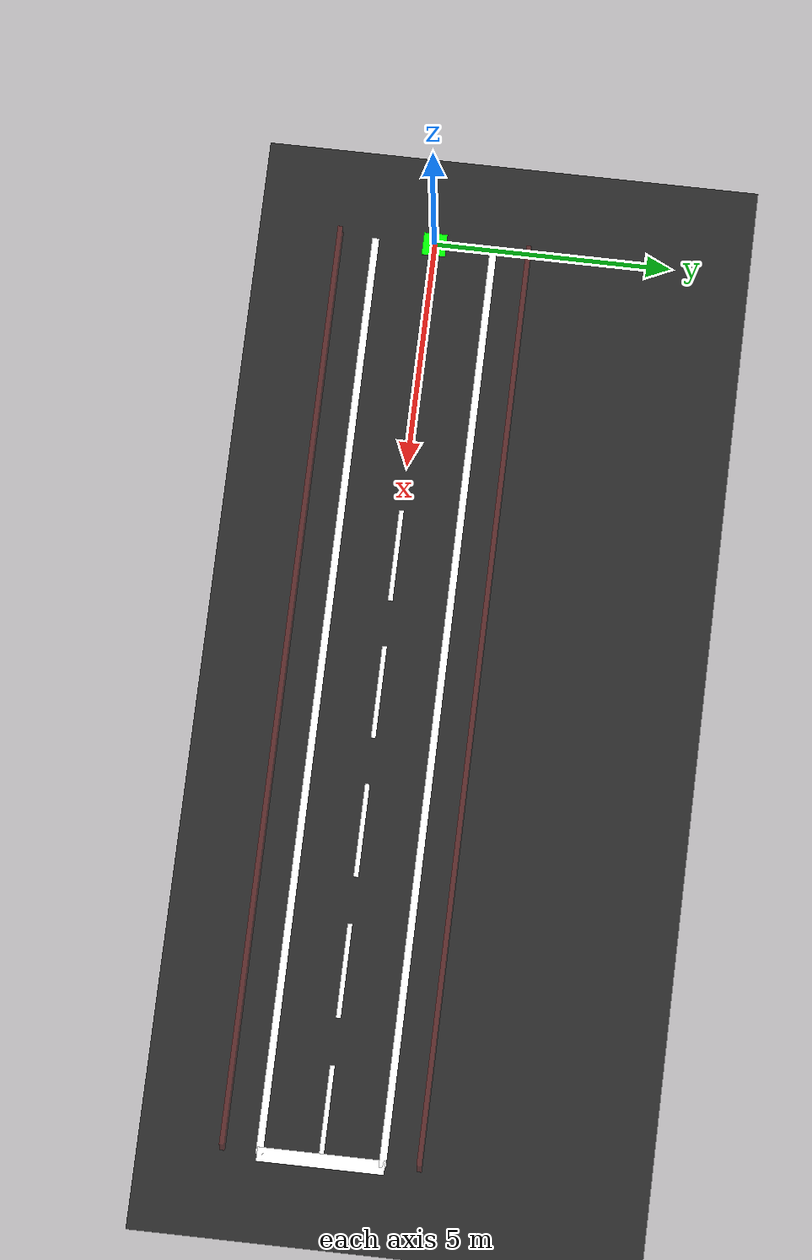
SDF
<?xml version="1.0" ?>
<sdf version='1.10'>
  <world name='abaja_track'>

    <!-- ====================================================================
         PHYSICS
    ==================================================================== -->
    <physics name='1ms' type='ignored'>
      <max_step_size>0.001</max_step_size>
      <real_time_factor>1</real_time_factor>
    </physics>

    <!-- ====================================================================
         PLUGINS
    ==================================================================== -->
    <plugin filename='gz-sim-physics-system'
            name='gz::sim::systems::Physics'/>
    <plugin filename='gz-sim-sensors-system'
            name='gz::sim::systems::Sensors'>
      <render_engine>ogre2</render_engine>
    </plugin>
    <plugin filename='gz-sim-scene-broadcaster-system'
            name='gz::sim::systems::SceneBroadcaster'/>
    <plugin filename='gz-sim-user-commands-system'
            name='gz::sim::systems::UserCommands'/>
    <plugin filename='gz-sim-diff-drive-system'
            name='gz::sim::systems::DiffDrive'/>

    <!-- ====================================================================
         SCENE & LIGHTING
    ==================================================================== -->
    <scene>
      <ambient>0.4 0.4 0.4 1</ambient>
      <background>0.7 0.7 0.7 1</background>
      <shadows>false</shadows>
    </scene>

    <light name='sun' type='directional'>
      <cast_shadows>false</cast_shadows>
      <pose>0 0 10 0 0 0</pose>
      <diffuse>0.9 0.9 0.9 1</diffuse>
      <specular>0.3 0.3 0.3 1</specular>
      <direction>-0.5 0.1 -0.9</direction>
      <attenuation>
        <range>1000</range>
        <constant>0.9</constant>
        <linear>0.01</linear>
        <quadratic>0.001</quadratic>
      </attenuation>
    </light>

    <model name='ground_plane'>
      <static>true</static>
      <link name='link'>
        <collision name='collision'>
          <geometry>
            <plane>
              <normal>0 0 1</normal>
              <size>50 50</size>
            </plane>
          </geometry>
          <surface>
            <friction>
              <ode>
                <mu>1.0</mu>
                <mu2>1.0</mu2>
              </ode>
            </friction>
          </surface>
        </collision>
        <visual name='visual'>
          <geometry>
            <plane>
              <normal>0 0 1</normal>
              <size>50 50</size>
            </plane>
          </geometry>
          <material>
            <ambient>0.15 0.15 0.15 1</ambient>
            <diffuse>0.15 0.15 0.15 1</diffuse>
            <specular>0.0 0.0 0.0 1</specular>
          </material>
        </visual>
      </link>
    </model>

    <!-- ++ STRAIGHT SECTION: X = 0 to 20m ++ -->

    <!-- Left edge line -->
    <model name='left_edge_straight'>
      <static>true</static>
      <pose>10 1.25 0.005 0 0 0</pose>
      <link name='link'>
        <visual name='vis'>
          <geometry><box><size>20 0.15 0.01</size></box></geometry>
          <material>
            <ambient>1 1 1 1</ambient>
            <diffuse>1 1 1 1</diffuse>
            <specular>0.5 0.5 0.5 1</specular>
          </material>
        </visual>
        <collision name='col'>
          <geometry><box><size>20 0.15 0.01</size></box></geometry>
        </collision>
      </link>
    </model>

    <!-- Right edge line -->
    <model name='right_edge_straight'>
      <static>true</static>
      <pose>10 -1.25 0.005 0 0 0</pose>
      <link name='link'>
        <visual name='vis'>
          <geometry><box><size>20 0.15 0.01</size></box></geometry>
          <material>
            <ambient>1 1 1 1</ambient>
            <diffuse>1 1 1 1</diffuse>
          </material>
        </visual>
        <collision name='col'>
          <geometry><box><size>20 0.15 0.01</size></box></geometry>
        </collision>
      </link>
    </model>

    <!-- Centre dashes (5 dashes × 2m long with 1m gaps) -->
    <model name='centre_dash_1'><static>true</static><pose>1 0 0.005 0 0 0</pose>
      <link name='link'><visual name='vis'><geometry><box><size>2 0.10 0.01</size></box></geometry>
        <material><ambient>1 1 1 1</ambient><diffuse>1 1 1 1</diffuse></material></visual>
        <collision name='col'><geometry><box><size>2 0.10 0.01</size></box></geometry></collision>
      </link></model>

    <model name='centre_dash_2'><static>true</static><pose>4 0 0.005 0 0 0</pose>
      <link name='link'><visual name='vis'><geometry><box><size>2 0.10 0.01</size></box></geometry>
        <material><ambient>1 1 1 1</ambient><diffuse>1 1 1 1</diffuse></material></visual>
        <collision name='col'><geometry><box><size>2 0.10 0.01</size></box></geometry></collision>
      </link></model>

    <model name='centre_dash_3'><static>true</static><pose>7 0 0.005 0 0 0</pose>
      <link name='link'><visual name='vis'><geometry><box><size>2 0.10 0.01</size></box></geometry>
        <material><ambient>1 1 1 1</ambient><diffuse>1 1 1 1</diffuse></material></visual>
        <collision name='col'><geometry><box><size>2 0.10 0.01</size></box></geometry></collision>
      </link></model>

    <model name='centre_dash_4'><static>true</static><pose>10 0 0.005 0 0 0</pose>
      <link name='link'><visual name='vis'><geometry><box><size>2 0.10 0.01</size></box></geometry>
        <material><ambient>1 1 1 1</ambient><diffuse>1 1 1 1</diffuse></material></visual>
        <collision name='col'><geometry><box><size>2 0.10 0.01</size></box></geometry></collision>
      </link></model>

    <model name='centre_dash_5'><static>true</static><pose>13 0 0.005 0 0 0</pose>
      <link name='link'><visual name='vis'><geometry><box><size>2 0.10 0.01</size></box></geometry>
        <material><ambient>1 1 1 1</ambient><diffuse>1 1 1 1</diffuse></material></visual>
        <collision name='col'><geometry><box><size>2 0.10 0.01</size></box></geometry></collision>
      </link></model>

    <model name='centre_dash_6'><static>true</static><pose>16 0 0.005 0 0 0</pose>
      <link name='link'><visual name='vis'><geometry><box><size>2 0.10 0.01</size></box></geometry>
        <material><ambient>1 1 1 1</ambient><diffuse>1 1 1 1</diffuse></material></visual>
        <collision name='col'><geometry><box><size>2 0.10 0.01</size></box></geometry></collision>
      </link></model>

    <model name='centre_dash_7'><static>true</static><pose>19 0 0.005 0 0 0</pose>
      <link name='link'><visual name='vis'><geometry><box><size>2 0.10 0.01</size></box></geometry>
        <material><ambient>1 1 1 1</ambient><diffuse>1 1 1 1</diffuse></material></visual>
        <collision name='col'><geometry><box><size>2 0.10 0.01</size></box></geometry></collision>
      </link></model>

    <!-- ++ END SECTION: stop line at X=20m ++ -->
    <model name='stop_line'>
      <static>true</static>
      <pose>20 0 0.005 0 0 0</pose>
      <link name='link'>
        <visual name='vis'>
          <geometry><box><size>0.3 2.6 0.01</size></box></geometry>
          <material><ambient>1 1 1 1</ambient><diffuse>1 1 1 1</diffuse></material>
        </visual>
        <collision name='col'>
          <geometry><box><size>0.3 2.6 0.01</size></box></geometry>
        </collision>
      </link>
    </model>

    <model name='left_wall'>
      <static>true</static>
      <pose>10 2.0 0.25 0 0 0</pose>
      <link name='link'>
        <collision name='col'>
          <geometry><box><size>20 0.1 0.5</size></box></geometry>
        </collision>
        <visual name='vis'>
          <geometry><box><size>20 0.1 0.5</size></box></geometry>
          <material><ambient>0.8 0.2 0.2 0.3</ambient><diffuse>0.8 0.2 0.2 0.3</diffuse></material>
        </visual>
      </link>
    </model>

    <model name='right_wall'>
      <static>true</static>
      <pose>10 -2.0 0.25 0 0 0</pose>
      <link name='link'>
        <collision name='col'>
          <geometry><box><size>20 0.1 0.5</size></box></geometry>
        </collision>
        <visual name='vis'>
          <geometry><box><size>20 0.1 0.5</size></box></geometry>
          <material><ambient>0.8 0.2 0.2 0.3</ambient><diffuse>0.8 0.2 0.2 0.3</diffuse></material>
        </visual>
      </link>
    </model>

    <model name='spawn_marker'>
      <static>true</static>
      <pose>0 0 0.005 0 0 0</pose>
      <link name='link'>
        <visual name='vis'>
          <geometry><box><size>0.5 0.5 0.01</size></box></geometry>
          <material><ambient>0 1 0 1</ambient><diffuse>0 1 0 1</diffuse></material>
        </visual>
      </link>
    </model>

  </world>
</sdf>
